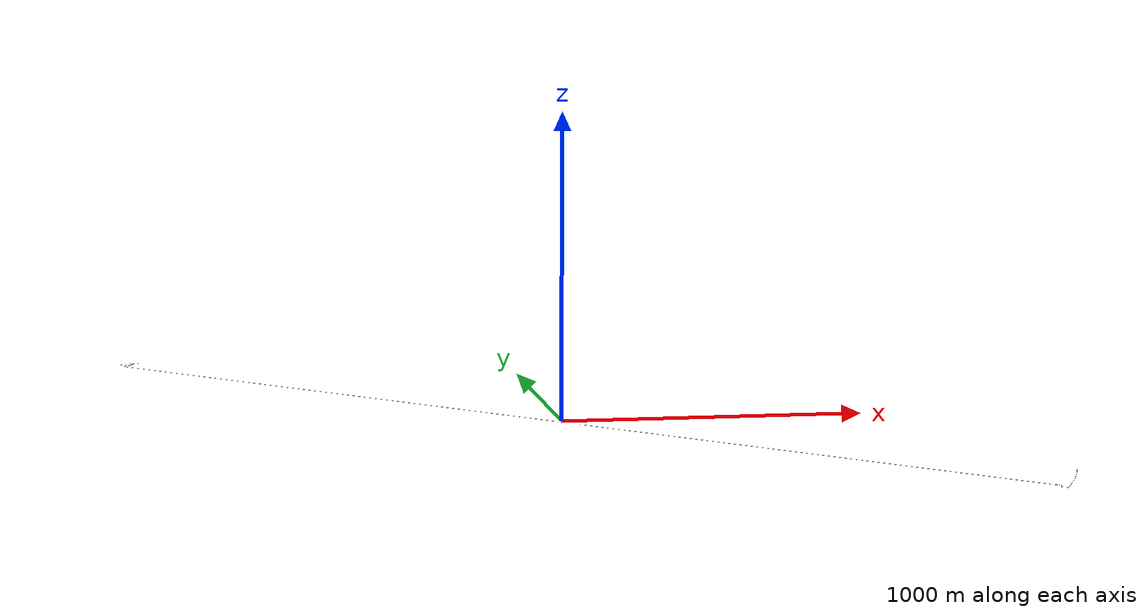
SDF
<?xml version="1.0"?>
<sdf version="1.4">
    <model name="maria_layout_pipes">
        <pose>0 0 0 0 0 0</pose>
        <static>true</static>
        <link name="maria_layout_pipes_body">
            <visual name="visual">
                <geometry>
                    <mesh>
                        <uri>model://maria_layout_pipes/visual.osgb</uri>
                    </mesh>
                </geometry>
            </visual>
            <collision name="collision">
                <geometry>
                    <mesh>
                        <uri>model://maria_layout_pipes/collision.stl</uri>
                    </mesh>
                </geometry>
            </collision>
            <inertial>
                <pose>0 0 -1 0 0 0</pose>
                <inertia>
                    <ixx>0.0</ixx>
                    <ixy>0</ixy>
                    <ixz>0.0</ixz>
                    <iyy>0.0</iyy>
                    <iyz>0</iyz>
                    <izz>0.0</izz>
                </inertia>
                <mass>1.0</mass>
            </inertial>
        </link>
    </model>
</sdf>
